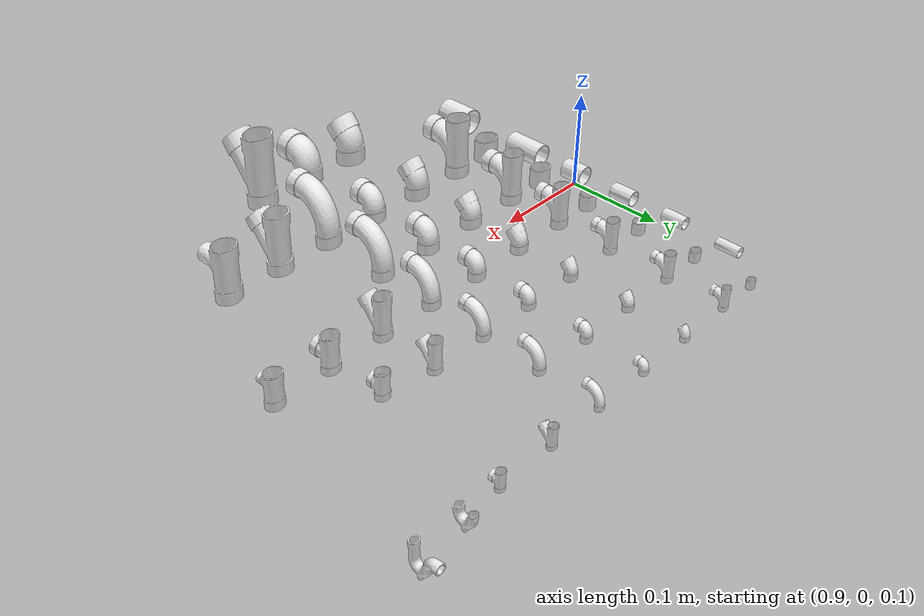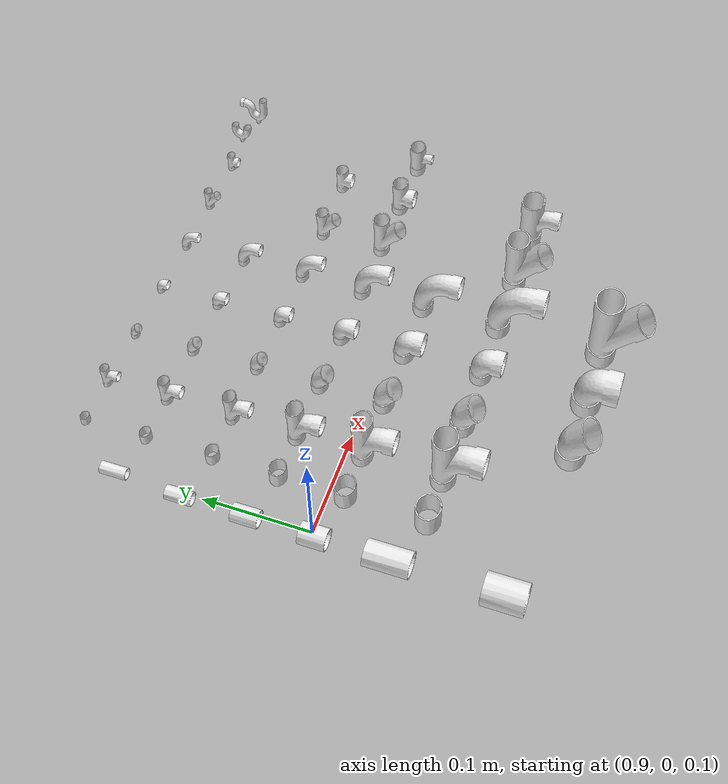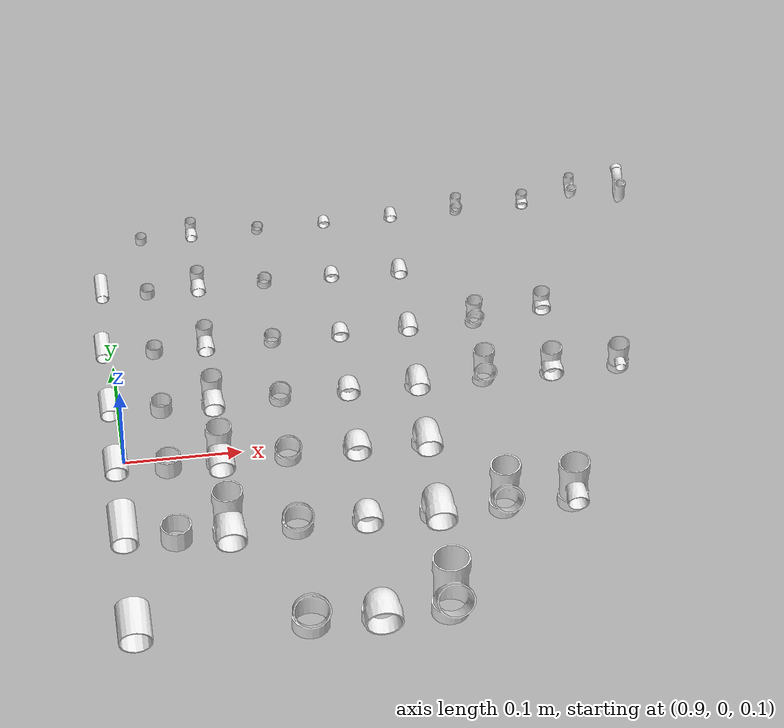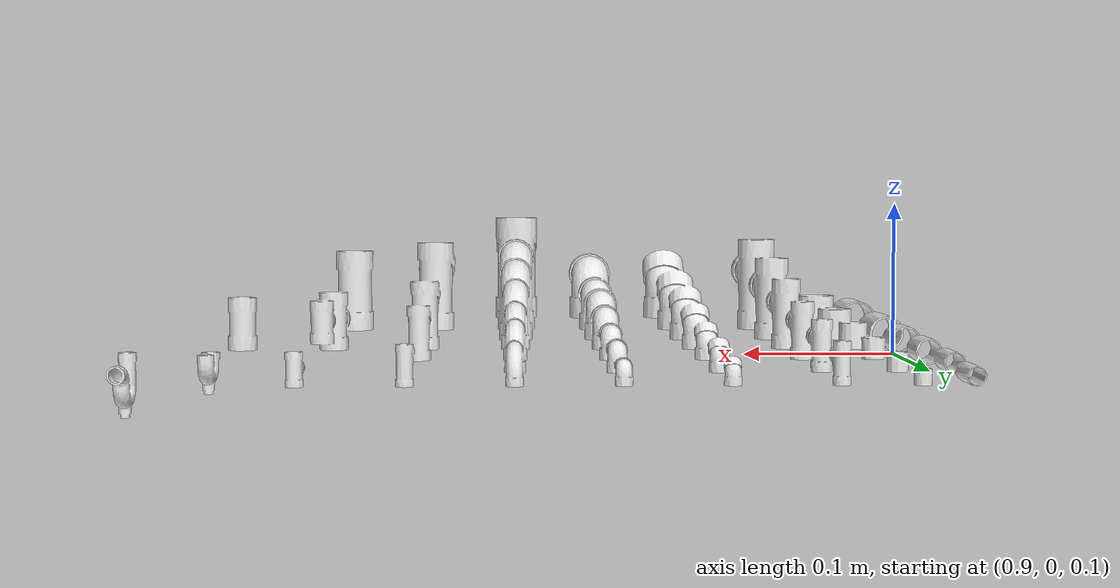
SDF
<?xml version="1.0" ?>
<sdf version="1.5">
  <model name="plumbing_parts">

    <pose>0 0 0  0 0 0</pose>

    <static>true</static>
    <link name="link">
      <inertial>
        <mass>54.4311</mass>
        <inertia>
          <ixx>1</ixx>
          <ixy>0</ixy>
          <ixz>0</ixz>
          <iyy>1</iyy>
          <iyz>0</iyz>
          <izz>1</izz>
        </inertia>
      </inertial>

      <collision name="collision">
	    <pose>0 0 0  0 0 0</pose>
        <geometry>
          <mesh>
            <uri>model://plumbing_parts/meshes/plumbing_parts.stl</uri>
          </mesh>
        </geometry>
      </collision>

      <visual name="visual">
        <geometry>
          <mesh>
            <uri>model://plumbing_parts/meshes/plumbing_parts.stl</uri>
          </mesh>
        </geometry>
        <material>
           <script>
  <name>Gazebo/White</name>
  </script>
        </material>
      </visual>
    </link>
  </model>
</sdf>
